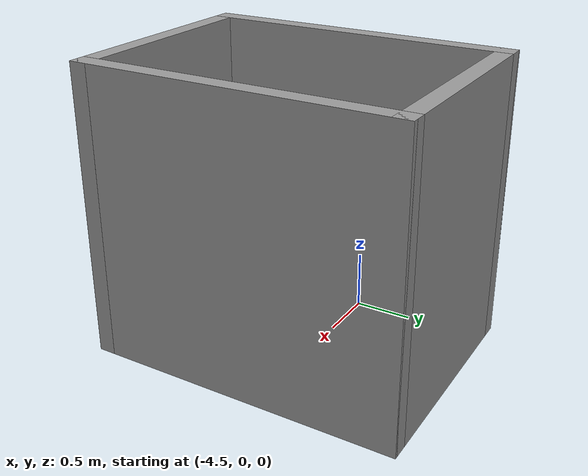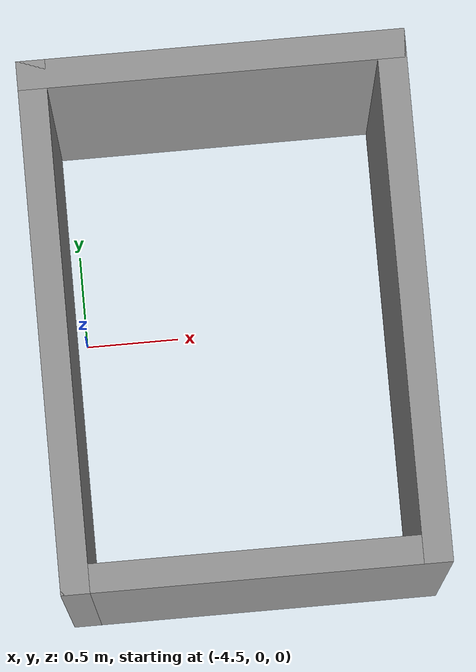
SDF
<?xml version='1.0'?>
<sdf version='1.7'>
  <model name='test'>
    <pose>-2.3525 -0.17 0 0 -0 0</pose>
    <link name='Wall_0'>
      <collision name='Wall_0_Collision'>
        <geometry>
          <box>
            <size>2.75 0.15 2.5</size>
          </box>
        </geometry>
        <pose>0 0 1.25 0 -0 0</pose>
      </collision>
      <visual name='Wall_0_Visual'>
        <pose>0 0 1.25 0 -0 0</pose>
        <geometry>
          <box>
            <size>2.75 0.15 2.5</size>
          </box>
        </geometry>
        <material>
          <script>
            <uri>file://media/materials/scripts/gazebo.material</uri>
            <name>Gazebo/Grey</name>
          </script>
          <ambient>1 1 1 1</ambient>
        </material>
        <meta>
          <layer>0</layer>
        </meta>
      </visual>
      <pose>-2.2775 -0 0 0 -0 1.5708</pose>
    </link>
    <link name='Wall_1'>
      <collision name='Wall_1_Collision'>
        <geometry>
          <box>
            <size>2 0.15 2.5</size>
          </box>
        </geometry>
        <pose>0 0 1.25 0 -0 0</pose>
      </collision>
      <visual name='Wall_1_Visual'>
        <pose>0 0 1.25 0 -0 0</pose>
        <geometry>
          <box>
            <size>2 0.15 2.5</size>
          </box>
        </geometry>
        <material>
          <script>
            <uri>file://media/materials/scripts/gazebo.material</uri>
            <name>Gazebo/Grey</name>
          </script>
          <ambient>1 1 1 1</ambient>
        </material>
        <meta>
          <layer>0</layer>
        </meta>
      </visual>
      <pose>-1.3525 1.3 0 0 -0 0</pose>
    </link>
    <link name='Wall_2'>
      <collision name='Wall_2_Collision'>
        <geometry>
          <box>
            <size>2.75 0.15 2.5</size>
          </box>
        </geometry>
        <pose>0 0 1.25 0 -0 0</pose>
      </collision>
      <visual name='Wall_2_Visual'>
        <pose>0 0 1.25 0 -0 0</pose>
        <geometry>
          <box>
            <size>2.75 0.15 2.5</size>
          </box>
        </geometry>
        <material>
          <script>
            <uri>file://media/materials/scripts/gazebo.material</uri>
            <name>Gazebo/Grey</name>
          </script>
          <ambient>1 1 1 1</ambient>
        </material>
        <meta>
          <layer>0</layer>
        </meta>
      </visual>
      <pose>-0.4275 -0 0 0 -0 -1.5708</pose>
    </link>
    <link name='Wall_3'>
      <collision name='Wall_3_Collision'>
        <geometry>
          <box>
            <size>2 0.15 2.5</size>
          </box>
        </geometry>
        <pose>0 0 1.25 0 -0 0</pose>
      </collision>
      <visual name='Wall_3_Visual'>
        <pose>0 0 1.25 0 -0 0</pose>
        <geometry>
          <box>
            <size>2 0.15 2.5</size>
          </box>
        </geometry>
        <material>
          <script>
            <uri>file://media/materials/scripts/gazebo.material</uri>
            <name>Gazebo/Grey</name>
          </script>
          <ambient>1 1 1 1</ambient>
        </material>
        <meta>
          <layer>0</layer>
        </meta>
      </visual>
      <pose>-1.3525 -1.3 0 0 -0 3.14159</pose>
    </link>
    <static>1</static>
  </model>
</sdf>
